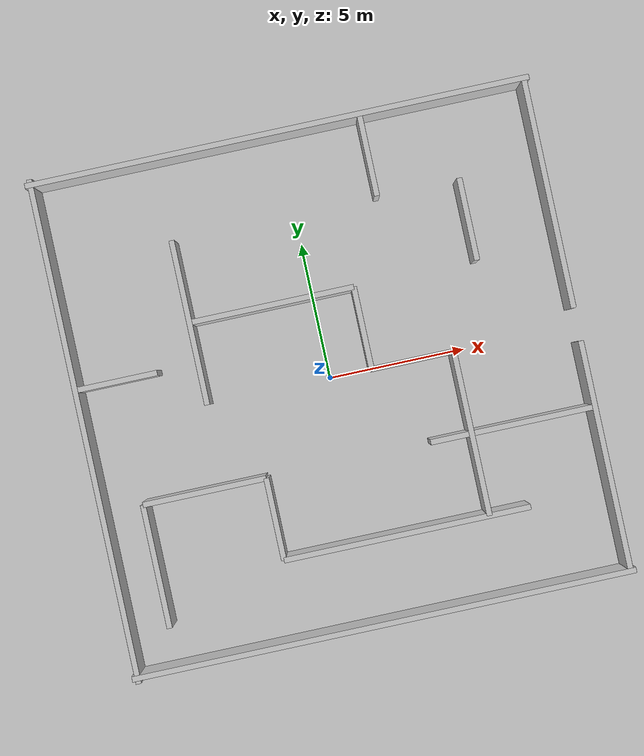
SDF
<sdf version='1.10'>
  <world name='maze_world'>
    <physics name='1ms' type='ignored'>
      <max_step_size>0.001</max_step_size>
      <real_time_factor>1</real_time_factor>
      <real_time_update_rate>1000</real_time_update_rate>
    </physics>
    <plugin name='gz::sim::systems::Physics' filename='gz-sim-physics-system'/>
    <plugin name='gz::sim::systems::SceneBroadcaster' filename='gz-sim-scene-broadcaster-system'/>
    <plugin name='gz::sim::systems::UserCommands' filename='gz-sim-user-commands-system'/>
    <gravity>0 0 -9.8000000000000007</gravity>
    <magnetic_field>5.5644999999999998e-06 2.2875799999999999e-05 -4.2388400000000002e-05</magnetic_field>
    <atmosphere type='adiabatic'/>

    <scene>
      <ambient>0.400000006 0.400000006 0.400000006 1</ambient>
      <background>0.699999988 0.699999988 0.699999988 1</background>
      <shadows>true</shadows>
    </scene>

    <model name='ground_plane'>
      <static>true</static>
      <link name='link_ground'>
        <collision name='collision_ground'>
          <geometry>
            <plane>
              <normal>0 0 1</normal>
              <size>50 50</size>
            </plane>
          </geometry>
        </collision>
        <visual name='visual_ground'>
          <geometry>
            <plane>
              <normal>0 0 1</normal>
              <size>50 50</size>
            </plane>
          </geometry>
          <material>
            <ambient>0.8 0.8 0.8 1</ambient>
            <diffuse>0.8 0.8 0.8 1</diffuse>
          </material>
        </visual>
        <pose>0 0 0 0 0 0</pose>
      </link>
    </model>

    <model name='wall_north'>
      <static>true</static>
      <pose>0 9 0.5 0 0 0</pose>
      <link name='link_wn'>
        <collision name='collision_wn'>
          <geometry>
            <box>
              <size>18.4 0.2 1</size>
            </box>
          </geometry>
        </collision>
        <visual name='visual_wn'>
          <geometry>
            <box>
              <size>18.4 0.2 1</size>
            </box>
          </geometry>
          <material>
            <ambient>0.8 0.8 0.8 1</ambient>
            <diffuse>0.8 0.8 0.8 1</diffuse>
          </material>
        </visual>
      </link>
    </model>

    <model name='wall_south'>
      <static>true</static>
      <pose>0 -9 0.5 0 0 0</pose>
      <link name='link_ws'>
        <collision name='collision_ws'>
          <geometry>
            <box>
              <size>18.4 0.2 1</size>
            </box>
          </geometry>
        </collision>
        <visual name='visual_ws'>
          <geometry>
            <box>
              <size>18.4 0.2 1</size>
            </box>
          </geometry>
          <material>
            <ambient>0.8 0.8 0.8 1</ambient>
            <diffuse>0.8 0.8 0.8 1</diffuse>
          </material>
        </visual>
      </link>
    </model>

    <model name='wall_west'>
      <static>true</static>
      <pose>-9 0 0.5 0 0 0</pose>
      <link name='link_ww'>
        <collision name='collision_ww'>
          <geometry>
            <box>
              <size>0.2 18.4 1</size>
            </box>
          </geometry>
        </collision>
        <visual name='visual_ww'>
          <geometry>
            <box>
              <size>0.2 18.4 1</size>
            </box>
          </geometry>
          <material>
            <ambient>0.8 0.8 0.8 1</ambient>
            <diffuse>0.8 0.8 0.8 1</diffuse>
          </material>
        </visual>
      </link>
    </model>

    <model name='wall_east_north'>
      <static>true</static>
      <pose>9 4.85 0.5 0 0 0</pose>
      <link name='link_wen'>
        <collision name='collision_wen'>
          <geometry>
            <box>
              <size>0.2 8.5 1</size>
            </box>
          </geometry>
        </collision>
        <visual name='visual_wen'>
          <geometry>
            <box>
              <size>0.2 8.5 1</size>
            </box>
          </geometry>
          <material>
            <ambient>0.8 0.8 0.8 1</ambient>
            <diffuse>0.8 0.8 0.8 1</diffuse>
          </material>
        </visual>
      </link>
    </model>

    <model name='wall_east_south'>
      <static>true</static>
      <pose>9 -4.85 0.5 0 0 0</pose>
      <link name='link_wes'>
        <collision name='collision_wes'>
          <geometry>
            <box>
              <size>0.2 8.5 1</size>
            </box>
          </geometry>
        </collision>
        <visual name='visual_wes'>
          <geometry>
            <box>
              <size>0.2 8.5 1</size>
            </box>
          </geometry>
          <material>
            <ambient>0.8 0.8 0.8 1</ambient>
            <diffuse>0.8 0.8 0.8 1</diffuse>
          </material>
        </visual>
      </link>
    </model>

    <model name='iwall_v1'>
      <static>true</static>
      <pose>3 7.5 0.5 0 0 0</pose>
      <link name='link_iv1'>
        <collision name='collision_iv1'>
          <geometry>
            <box>
              <size>0.2 3 1</size>
            </box>
          </geometry>
        </collision>
        <visual name='visual_iv1'>
          <geometry>
            <box>
              <size>0.2 3 1</size>
            </box>
          </geometry>
          <material>
            <ambient>0.8 0.8 0.8 1</ambient>
            <diffuse>0.8 0.8 0.8 1</diffuse>
          </material>
        </visual>
      </link>
    </model>

    <model name='iwall_h2'>
      <static>true</static>
      <pose>-7.5 1.5 0.5 0 0 0</pose>
      <link name='link_ih2'>
        <collision name='collision_ih2'>
          <geometry>
            <box>
              <size>3 0.2 1</size>
            </box>
          </geometry>
        </collision>
        <visual name='visual_ih2'>
          <geometry>
            <box>
              <size>3 0.2 1</size>
            </box>
          </geometry>
          <material>
            <ambient>0.8 0.8 0.8 1</ambient>
            <diffuse>0.8 0.8 0.8 1</diffuse>
          </material>
        </visual>
      </link>
    </model>

    <model name='iwall_v3'>
      <static>true</static>
      <pose>-4.5 3 0.5 0 0 0</pose>
      <link name='link_iv3'>
        <collision name='collision_iv3'>
          <geometry>
            <box>
              <size>0.2 6 1</size>
            </box>
          </geometry>
        </collision>
        <visual name='visual_iv3'>
          <geometry>
            <box>
              <size>0.2 6 1</size>
            </box>
          </geometry>
          <material>
            <ambient>0.8 0.8 0.8 1</ambient>
            <diffuse>0.8 0.8 0.8 1</diffuse>
          </material>
        </visual>
      </link>
    </model>

    <model name='iwall_h3'>
      <static>true</static>
      <pose>-1.5 3 0.5 0 0 0</pose>
      <link name='link_ih3'>
        <collision name='collision_ih3'>
          <geometry>
            <box>
              <size>6 0.2 1</size>
            </box>
          </geometry>
        </collision>
        <visual name='visual_ih3'>
          <geometry>
            <box>
              <size>6 0.2 1</size>
            </box>
          </geometry>
          <material>
            <ambient>0.8 0.8 0.8 1</ambient>
            <diffuse>0.8 0.8 0.8 1</diffuse>
          </material>
        </visual>
      </link>
    </model>

    <model name='iwall_v4'>
      <static>true</static>
      <pose>1.5 1.5 0.5 0 0 0</pose>
      <link name='link_iv4'>
        <collision name='collision_iv4'>
          <geometry>
            <box>
              <size>0.2 3 1</size>
            </box>
          </geometry>
        </collision>
        <visual name='visual_iv4'>
          <geometry>
            <box>
              <size>0.2 3 1</size>
            </box>
          </geometry>
          <material>
            <ambient>0.8 0.8 0.8 1</ambient>
            <diffuse>0.8 0.8 0.8 1</diffuse>
          </material>
        </visual>
      </link>
    </model>

    <model name='iwall_h4'>
      <static>true</static>
      <pose>3 0 0.5 0 0 0</pose>
      <link name='link_ih4'>
        <collision name='collision_ih4'>
          <geometry>
            <box>
              <size>3 0.2 1</size>
            </box>
          </geometry>
        </collision>
        <visual name='visual_ih4'>
          <geometry>
            <box>
              <size>3 0.2 1</size>
            </box>
          </geometry>
          <material>
            <ambient>0.8 0.8 0.8 1</ambient>
            <diffuse>0.8 0.8 0.8 1</diffuse>
          </material>
        </visual>
      </link>
    </model>

    <model name='iwall_v5'>
      <static>true</static>
      <pose>4.5 -3 0.5 0 0 0</pose>
      <link name='link_iv5'>
        <collision name='collision_iv5'>
          <geometry>
            <box>
              <size>0.2 6 1</size>
            </box>
          </geometry>
        </collision>
        <visual name='visual_iv5'>
          <geometry>
            <box>
              <size>0.2 6 1</size>
            </box>
          </geometry>
          <material>
            <ambient>0.8 0.8 0.8 1</ambient>
            <diffuse>0.8 0.8 0.8 1</diffuse>
          </material>
        </visual>
      </link>
    </model>

    <model name='iwall_h5'>
      <static>true</static>
      <pose>1.5 -6 0.5 0 0 0</pose>
      <link name='link_ih5'>
        <collision name='collision_ih5'>
          <geometry>
            <box>
              <size>9 0.2 1</size>
            </box>
          </geometry>
        </collision>
        <visual name='visual_ih5'>
          <geometry>
            <box>
              <size>9 0.2 1</size>
            </box>
          </geometry>
          <material>
            <ambient>0.8 0.8 0.8 1</ambient>
            <diffuse>0.8 0.8 0.8 1</diffuse>
          </material>
        </visual>
      </link>
    </model>

    <model name='iwall_v6'>
      <static>true</static>
      <pose>-3 -4.5 0.5 0 0 0</pose>
      <link name='link_iv6'>
        <collision name='collision_iv6'>
          <geometry>
            <box>
              <size>0.2 3 1</size>
            </box>
          </geometry>
        </collision>
        <visual name='visual_iv6'>
          <geometry>
            <box>
              <size>0.2 3 1</size>
            </box>
          </geometry>
          <material>
            <ambient>0.8 0.8 0.8 1</ambient>
            <diffuse>0.8 0.8 0.8 1</diffuse>
          </material>
        </visual>
      </link>
    </model>

    <model name='iwall_h6'>
      <static>true</static>
      <pose>-5.25 -3 0.5 0 0 0</pose>
      <link name='link_ih6'>
        <collision name='collision_ih6'>
          <geometry>
            <box>
              <size>4.5 0.2 1</size>
            </box>
          </geometry>
        </collision>
        <visual name='visual_ih6'>
          <geometry>
            <box>
              <size>4.5 0.2 1</size>
            </box>
          </geometry>
          <material>
            <ambient>0.8 0.8 0.8 1</ambient>
            <diffuse>0.8 0.8 0.8 1</diffuse>
          </material>
        </visual>
      </link>
    </model>

    <model name='iwall_v7'>
      <static>true</static>
      <pose>-7.5 -5.25 0.5 0 0 0</pose>
      <link name='link_iv7'>
        <collision name='collision_iv7'>
          <geometry>
            <box>
              <size>0.2 4.5 1</size>
            </box>
          </geometry>
        </collision>
        <visual name='visual_iv7'>
          <geometry>
            <box>
              <size>0.2 4.5 1</size>
            </box>
          </geometry>
          <material>
            <ambient>0.8 0.8 0.8 1</ambient>
            <diffuse>0.8 0.8 0.8 1</diffuse>
          </material>
        </visual>
      </link>
    </model>

    <model name='iwall_h7'>
      <static>true</static>
      <pose>6 -3 0.5 0 0 0</pose>
      <link name='link_ih7'>
        <collision name='collision_ih7'>
          <geometry>
            <box>
              <size>6 0.2 1</size>
            </box>
          </geometry>
        </collision>
        <visual name='visual_ih7'>
          <geometry>
            <box>
              <size>6 0.2 1</size>
            </box>
          </geometry>
          <material>
            <ambient>0.8 0.8 0.8 1</ambient>
            <diffuse>0.8 0.8 0.8 1</diffuse>
          </material>
        </visual>
      </link>
    </model>

    <model name='iwall_v8'>
      <static>true</static>
      <pose>6 4.5 0.5 0 0 0</pose>
      <link name='link_iv8'>
        <collision name='collision_iv8'>
          <geometry>
            <box>
              <size>0.2 3 1</size>
            </box>
          </geometry>
        </collision>
        <visual name='visual_iv8'>
          <geometry>
            <box>
              <size>0.2 3 1</size>
            </box>
          </geometry>
          <material>
            <ambient>0.8 0.8 0.8 1</ambient>
            <diffuse>0.8 0.8 0.8 1</diffuse>
          </material>
        </visual>
      </link>
    </model>

    <light name='sun' type='directional'>
      <pose>0 0 10 0 0 0</pose>
      <cast_shadows>true</cast_shadows>
      <intensity>1</intensity>
      <direction>-0.5 0.1 -0.9</direction>
      <diffuse>0.8 0.8 0.8 1</diffuse>
      <specular>0.2 0.2 0.2 1</specular>
    </light>
  </world>
</sdf>
